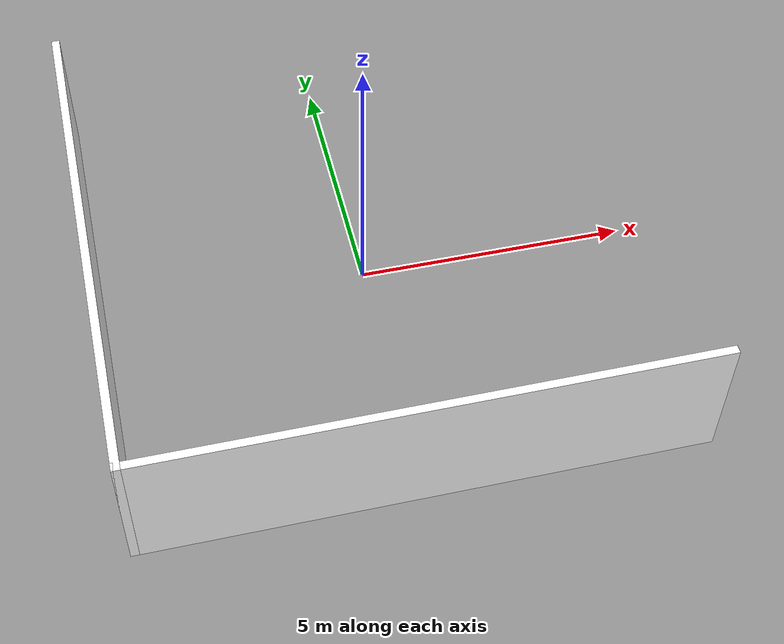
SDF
<?xml version='1.0'?>
<sdf version='1.6'>
  <model name='Walls'>
    <pose frame=''>-0.0 -0.0 0 0 -0 0</pose>
    <link name='Wall_24'>
      <collision name='Wall_24_Collision'>
        <geometry>
          <box>
            <size>10 0.15 2.5</size>
          </box>
        </geometry>
        <pose frame=''>0 0 1.25 0 -0 0</pose>
      </collision>
      <visual name='Wall_24_Visual'>
        <pose frame=''>0 0 1.25 0 -0 0</pose>
        <geometry>
          <box>
            <size>10 0.15 2.5</size>
          </box>
        </geometry>
        <material>
          <ambient>1 1 1 1</ambient>
          <diffuse>1 1 1 1</diffuse>
          <specular>0 0 0 0</specular>
          <emissive>0 0 0 1</emissive>
        </material>
        <meta>
          <layer>0</layer>
        </meta>
      </visual>
      <pose frame=''>0 -4.925 0 0 -0 0</pose>
    </link>
    <link name='Wall_26'>
      <collision name='Wall_26_Collision'>
        <geometry>
          <box>
            <size>10 0.15 2.5</size>
          </box>
        </geometry>
        <pose frame=''>0 0 1.25 0 -0 0</pose>
      </collision>
      <visual name='Wall_26_Visual'>
        <pose frame=''>0 0 1.25 0 -0 0</pose>
        <geometry>
          <box>
            <size>10 0.15 2.5</size>
          </box>
        </geometry>
        <material>
          <ambient>1 1 1 1</ambient>
          <diffuse>1 1 1 1</diffuse>
          <specular>0 0 0 0</specular>
          <emissive>0 0 0 1</emissive>
        </material>
        <meta>
          <layer>0</layer>
        </meta>
      </visual>
      <pose frame=''>-4.925 -0 0 0 -0 -1.5708</pose>
    </link>
    <static>1</static>
  </model>
</sdf>
